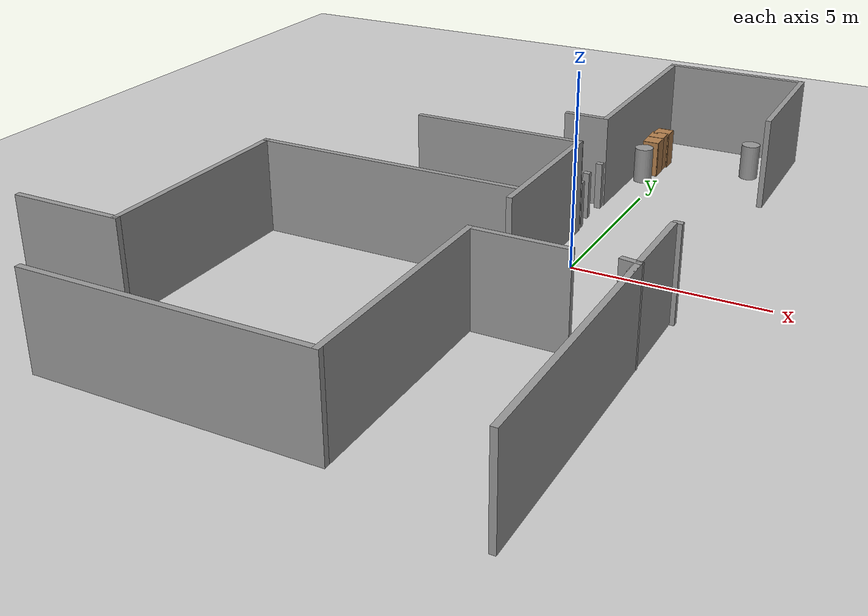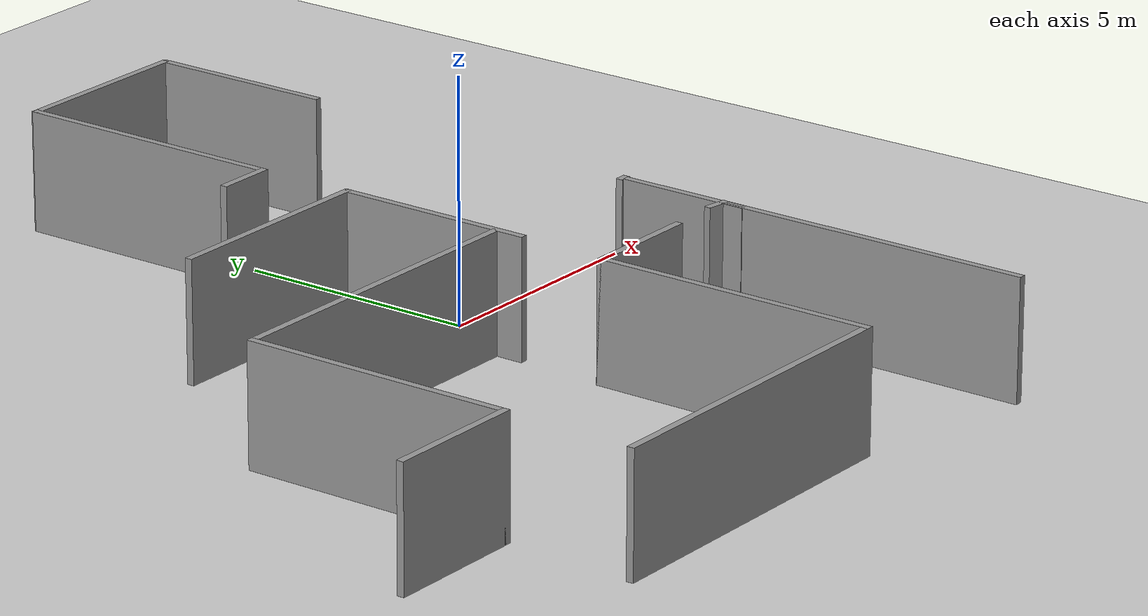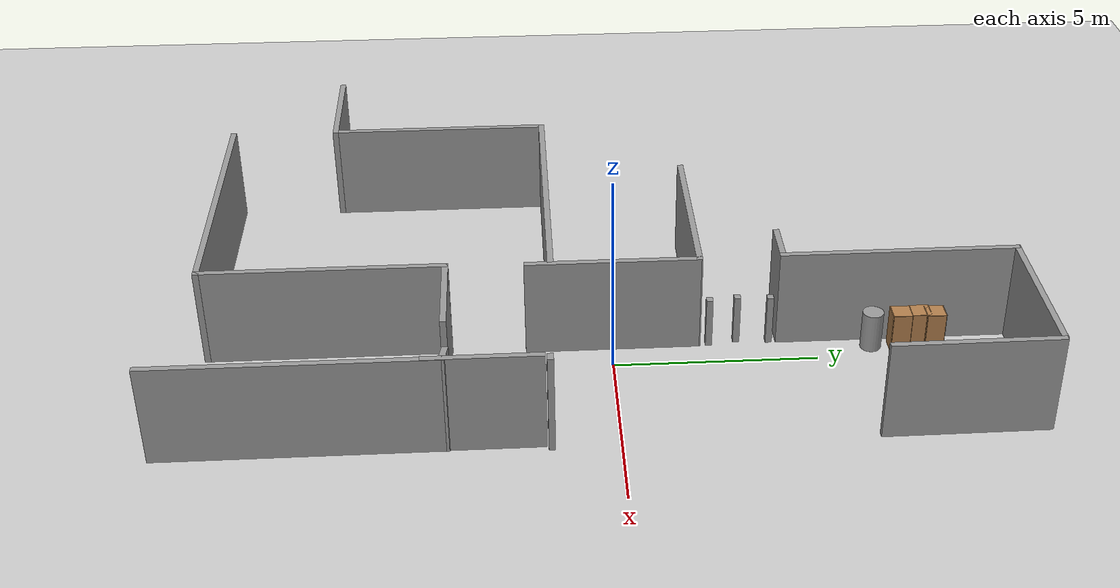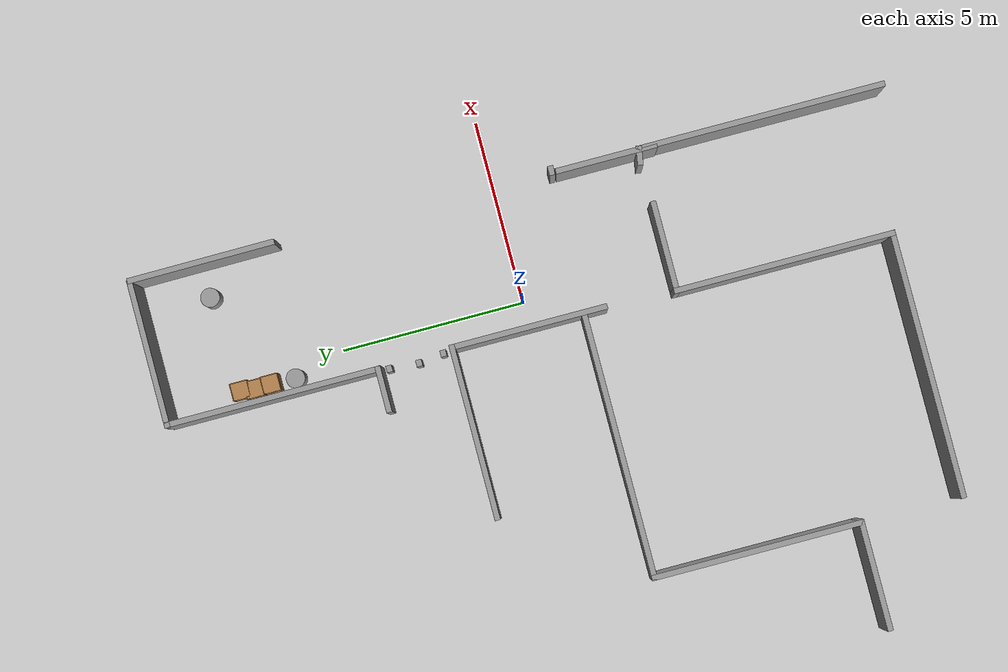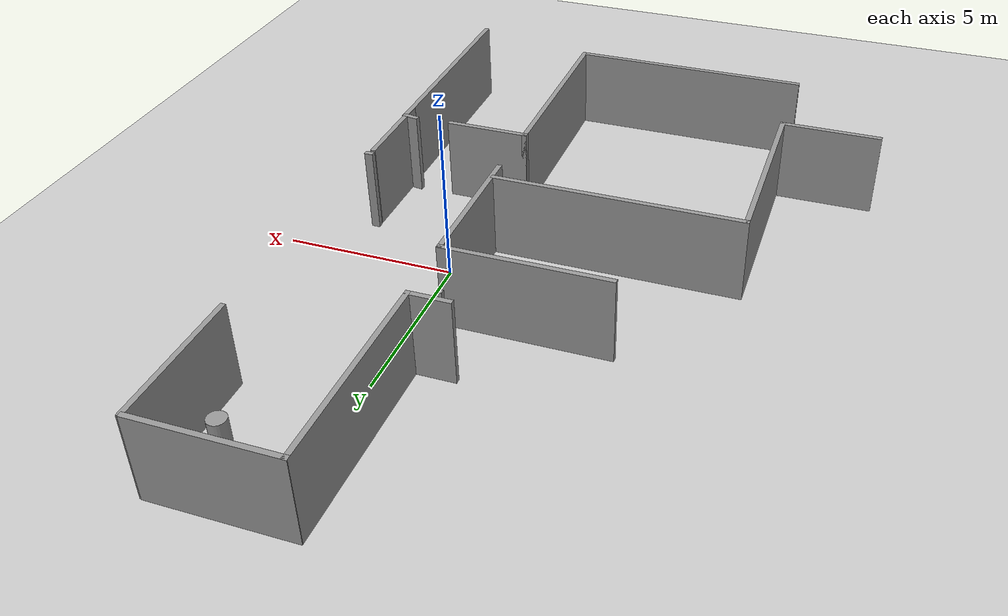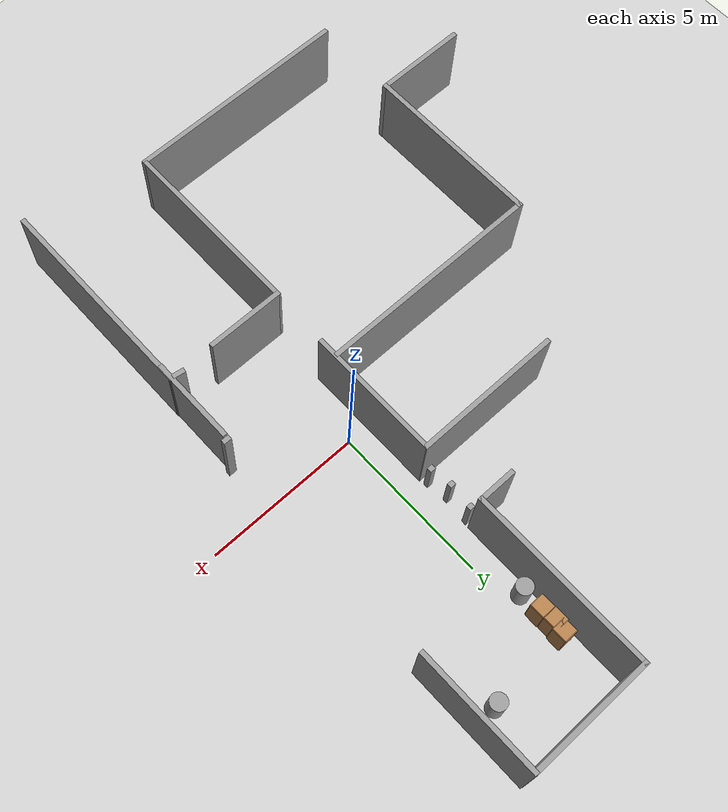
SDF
<sdf version="1.7">
 <world name="default">
  <model name="ground_plane">
   <static>1</static>
   <link name="link">
    <collision name="collision">
     <geometry><plane><normal>0 0 1</normal><size>100 100</size></plane></geometry>
     <surface>
      <contact><collide_bitmask>65535</collide_bitmask></contact>
      <friction><ode><mu>100</mu><mu2>50</mu2></ode></friction>
     </surface>
    </collision>
    <visual name="visual">
     <cast_shadows>0</cast_shadows>
     <geometry><plane><normal>0 0 1</normal><size>100 100</size></plane></geometry>
     <material>
      <script><uri>file://media/materials/scripts/gazebo.material</uri><name>Gazebo/Grey</name></script>
     </material>
    </visual>
   </link>
  </model>
  <model name="unit_box_clone">
   <pose>-0.795969 2.40218 0.644229 0 1.3e-05 -0.000116</pose>
   <link name="link">
    <inertial>
     <mass>1</mass>
     <inertia>
      <ixx>0.166667</ixx>
      <ixy>0</ixy>
      <ixz>0</ixz>
      <iyy>0.166667</iyy>
      <iyz>0</iyz>
      <izz>0.166667</izz>
     </inertia>
    </inertial>
    <collision name="collision"><geometry><box><size>0.179333 0.158753 1.28846</size></box></geometry></collision>
    <visual name="visual">
     <geometry><box><size>0.179333 0.158753 1.28846</size></box></geometry>
     <material>
      <script><name>Gazebo/Grey</name><uri>file://media/materials/scripts/gazebo.material</uri></script>
     </material>
    </visual>
   </link>
  </model>
  <model name="unit_box_clone_0">
   <pose>-0.82605 3.89112 0.64424 2e-06 0.000113 -0.000279</pose>
   <link name="link">
    <inertial>
     <mass>1</mass>
     <inertia>
      <ixx>0.166667</ixx>
      <ixy>0</ixy>
      <ixz>0</ixz>
      <iyy>0.166667</iyy>
      <iyz>0</iyz>
      <izz>0.166667</izz>
     </inertia>
    </inertial>
    <collision name="collision"><geometry><box><size>0.179333 0.158753 1.28846</size></box></geometry></collision>
    <visual name="visual">
     <geometry><box><size>0.179333 0.158753 1.28846</size></box></geometry>
     <material>
      <script><name>Gazebo/Grey</name><uri>file://media/materials/scripts/gazebo.material</uri></script>
     </material>
    </visual>
   </link>
  </model>
  <model name="unit_box_clone_1">
   <pose>-0.881827 3.0893 0.644229 0 1.3e-05 -0.000116</pose>
   <link name="link">
    <inertial>
     <mass>1</mass>
     <inertia>
      <ixx>0.166667</ixx>
      <ixy>0</ixy>
      <ixz>0</ixz>
      <iyy>0.166667</iyy>
      <iyz>0</iyz>
      <izz>0.166667</izz>
     </inertia>
    </inertial>
    <collision name="collision"><geometry><box><size>0.179333 0.158753 1.28846</size></box></geometry></collision>
    <visual name="visual">
     <geometry><box><size>0.179333 0.158753 1.28846</size></box></geometry>
     <material>
      <script><name>Gazebo/Grey</name><uri>file://media/materials/scripts/gazebo.material</uri></script>
     </material>
    </visual>
   </link>
  </model>
  <model name="cabinet_clone">
   <static>1</static>
   <link name="cabinet_bottom_plate">
    <inertial>
     <pose>0 0 -1 0 -0 0</pose>
     <inertia><ixx>2.05</ixx><ixy>0</ixy><ixz>0</ixz><iyy>2.05</iyy><iyz>0</iyz><izz>2.05</izz></inertia>
     <mass>25</mass>
    </inertial>
    <collision name="cabinet_bottom_plate_geom">
     <pose>0 0 0.01 0 -0 0</pose>
     <geometry><box><size>0.45 0.45 0.02</size></box></geometry>
    </collision>
    <visual name="cabinet_bottom_plate_geom_visual">
     <pose>0 0 0.01 0 -0 0</pose>
     <geometry><box><size>0.45 0.45 0.02</size></box></geometry>
     <material>
      <script><uri>file://media/materials/scripts/gazebo.material</uri><name>Gazebo/Wood</name></script>
     </material>
    </visual>
    <collision name="cabinet_bottom_plate_geom_cabinet_back_plate">
     <pose>0.235 0 0.51 0 -0 0</pose>
     <geometry><box><size>0.02 0.45 1.02</size></box></geometry>
    </collision>
    <visual name="cabinet_bottom_plate_geom_cabinet_back_plate_visual">
     <pose>0.235 0 0.51 0 -0 0</pose>
     <geometry><box><size>0.02 0.45 1.02</size></box></geometry>
     <material>
      <script><uri>file://media/materials/scripts/gazebo.material</uri><name>Gazebo/Wood</name></script>
     </material>
    </visual>
    <collision name="cabinet_bottom_plate_geom_cabinet_left_plate">
     <pose>0 0.235 0.51 0 -0 0</pose>
     <geometry><box><size>0.45 0.02 1.02</size></box></geometry>
    </collision>
    <visual name="cabinet_bottom_plate_geom_cabinet_left_plate_visual">
     <pose>0 0.235 0.51 0 -0 0</pose>
     <geometry><box><size>0.45 0.02 1.02</size></box></geometry>
     <material>
      <script><uri>file://media/materials/scripts/gazebo.material</uri><name>Gazebo/Wood</name></script>
     </material>
    </visual>
    <collision name="cabinet_bottom_plate_geom_cabinet_middle_plate">
     <pose>0 0 0.51 0 -0 0</pose>
     <geometry><box><size>0.45 0.45 0.02</size></box></geometry>
    </collision>
    <visual name="cabinet_bottom_plate_geom_cabinet_middle_plate_visual">
     <pose>0 0 0.51 0 -0 0</pose>
     <geometry><box><size>0.45 0.45 0.02</size></box></geometry>
     <material>
      <script><uri>file://media/materials/scripts/gazebo.material</uri><name>Gazebo/Wood</name></script>
     </material>
    </visual>
    <collision name="cabinet_bottom_plate_geom_cabinet_right_plate">
     <pose>0 -0.235 0.51 0 -0 0</pose>
     <geometry><box><size>0.45 0.02 1.02</size></box></geometry>
    </collision>
    <visual name="cabinet_bottom_plate_geom_cabinet_right_plate_visual">
     <pose>0 -0.235 0.51 0 -0 0</pose>
     <geometry><box><size>0.45 0.02 1.02</size></box></geometry>
     <material>
      <script><uri>file://media/materials/scripts/gazebo.material</uri><name>Gazebo/Wood</name></script>
     </material>
    </visual>
    <collision name="cabinet_bottom_plate_geom_cabinet_top_plate">
     <pose>0 0 1.01 0 -0 0</pose>
     <geometry><box><size>0.45 0.45 0.02</size></box></geometry>
    </collision>
    <visual name="cabinet_bottom_plate_geom_cabinet_top_plate_visual">
     <pose>0 0 1.01 0 -0 0</pose>
     <geometry><box><size>0.45 0.45 0.02</size></box></geometry>
     <material>
      <script><uri>file://media/materials/scripts/gazebo.material</uri><name>Gazebo/Wood</name></script>
     </material>
    </visual>
   </link>
   <pose>-0.388338 7.0544 0 0 -0 0</pose>
  </model>
  <model name="cabinet_clone_0">
   <static>1</static>
   <link name="cabinet_bottom_plate">
    <inertial>
     <pose>0 0 -1 0 -0 0</pose>
     <inertia><ixx>2.05</ixx><ixy>0</ixy><ixz>0</ixz><iyy>2.05</iyy><iyz>0</iyz><izz>2.05</izz></inertia>
     <mass>25</mass>
    </inertial>
    <collision name="cabinet_bottom_plate_geom">
     <pose>0 0 0.01 0 -0 0</pose>
     <geometry><box><size>0.45 0.45 0.02</size></box></geometry>
    </collision>
    <visual name="cabinet_bottom_plate_geom_visual">
     <pose>0 0 0.01 0 -0 0</pose>
     <geometry><box><size>0.45 0.45 0.02</size></box></geometry>
     <material>
      <script><uri>file://media/materials/scripts/gazebo.material</uri><name>Gazebo/Wood</name></script>
     </material>
    </visual>
    <collision name="cabinet_bottom_plate_geom_cabinet_back_plate">
     <pose>0.235 0 0.51 0 -0 0</pose>
     <geometry><box><size>0.02 0.45 1.02</size></box></geometry>
    </collision>
    <visual name="cabinet_bottom_plate_geom_cabinet_back_plate_visual">
     <pose>0.235 0 0.51 0 -0 0</pose>
     <geometry><box><size>0.02 0.45 1.02</size></box></geometry>
     <material>
      <script><uri>file://media/materials/scripts/gazebo.material</uri><name>Gazebo/Wood</name></script>
     </material>
    </visual>
    <collision name="cabinet_bottom_plate_geom_cabinet_left_plate">
     <pose>0 0.235 0.51 0 -0 0</pose>
     <geometry><box><size>0.45 0.02 1.02</size></box></geometry>
    </collision>
    <visual name="cabinet_bottom_plate_geom_cabinet_left_plate_visual">
     <pose>0 0.235 0.51 0 -0 0</pose>
     <geometry><box><size>0.45 0.02 1.02</size></box></geometry>
     <material>
      <script><uri>file://media/materials/scripts/gazebo.material</uri><name>Gazebo/Wood</name></script>
     </material>
    </visual>
    <collision name="cabinet_bottom_plate_geom_cabinet_middle_plate">
     <pose>0 0 0.51 0 -0 0</pose>
     <geometry><box><size>0.45 0.45 0.02</size></box></geometry>
    </collision>
    <visual name="cabinet_bottom_plate_geom_cabinet_middle_plate_visual">
     <pose>0 0 0.51 0 -0 0</pose>
     <geometry><box><size>0.45 0.45 0.02</size></box></geometry>
     <material>
      <script><uri>file://media/materials/scripts/gazebo.material</uri><name>Gazebo/Wood</name></script>
     </material>
    </visual>
    <collision name="cabinet_bottom_plate_geom_cabinet_right_plate">
     <pose>0 -0.235 0.51 0 -0 0</pose>
     <geometry><box><size>0.45 0.02 1.02</size></box></geometry>
    </collision>
    <visual name="cabinet_bottom_plate_geom_cabinet_right_plate_visual">
     <pose>0 -0.235 0.51 0 -0 0</pose>
     <geometry><box><size>0.45 0.02 1.02</size></box></geometry>
     <material>
      <script><uri>file://media/materials/scripts/gazebo.material</uri><name>Gazebo/Wood</name></script>
     </material>
    </visual>
    <collision name="cabinet_bottom_plate_geom_cabinet_top_plate">
     <pose>0 0 1.01 0 -0 0</pose>
     <geometry><box><size>0.45 0.45 0.02</size></box></geometry>
    </collision>
    <visual name="cabinet_bottom_plate_geom_cabinet_top_plate_visual">
     <pose>0 0 1.01 0 -0 0</pose>
     <geometry><box><size>0.45 0.45 0.02</size></box></geometry>
     <material>
      <script><uri>file://media/materials/scripts/gazebo.material</uri><name>Gazebo/Wood</name></script>
     </material>
    </visual>
   </link>
   <pose>-0.404646 7.52036 0 0 -0 0</pose>
  </model>
  <model name="cabinet_clone_1">
   <static>1</static>
   <link name="cabinet_bottom_plate">
    <inertial>
     <pose>0 0 -1 0 -0 0</pose>
     <inertia><ixx>2.05</ixx><ixy>0</ixy><ixz>0</ixz><iyy>2.05</iyy><iyz>0</iyz><izz>2.05</izz></inertia>
     <mass>25</mass>
    </inertial>
    <collision name="cabinet_bottom_plate_geom">
     <pose>0 0 0.01 0 -0 0</pose>
     <geometry><box><size>0.45 0.45 0.02</size></box></geometry>
    </collision>
    <visual name="cabinet_bottom_plate_geom_visual">
     <pose>0 0 0.01 0 -0 0</pose>
     <geometry><box><size>0.45 0.45 0.02</size></box></geometry>
     <material>
      <script><uri>file://media/materials/scripts/gazebo.material</uri><name>Gazebo/Wood</name></script>
     </material>
    </visual>
    <collision name="cabinet_bottom_plate_geom_cabinet_back_plate">
     <pose>0.235 0 0.51 0 -0 0</pose>
     <geometry><box><size>0.02 0.45 1.02</size></box></geometry>
    </collision>
    <visual name="cabinet_bottom_plate_geom_cabinet_back_plate_visual">
     <pose>0.235 0 0.51 0 -0 0</pose>
     <geometry><box><size>0.02 0.45 1.02</size></box></geometry>
     <material>
      <script><uri>file://media/materials/scripts/gazebo.material</uri><name>Gazebo/Wood</name></script>
     </material>
    </visual>
    <collision name="cabinet_bottom_plate_geom_cabinet_left_plate">
     <pose>0 0.235 0.51 0 -0 0</pose>
     <geometry><box><size>0.45 0.02 1.02</size></box></geometry>
    </collision>
    <visual name="cabinet_bottom_plate_geom_cabinet_left_plate_visual">
     <pose>0 0.235 0.51 0 -0 0</pose>
     <geometry><box><size>0.45 0.02 1.02</size></box></geometry>
     <material>
      <script><uri>file://media/materials/scripts/gazebo.material</uri><name>Gazebo/Wood</name></script>
     </material>
    </visual>
    <collision name="cabinet_bottom_plate_geom_cabinet_middle_plate">
     <pose>0 0 0.51 0 -0 0</pose>
     <geometry><box><size>0.45 0.45 0.02</size></box></geometry>
    </collision>
    <visual name="cabinet_bottom_plate_geom_cabinet_middle_plate_visual">
     <pose>0 0 0.51 0 -0 0</pose>
     <geometry><box><size>0.45 0.45 0.02</size></box></geometry>
     <material>
      <script><uri>file://media/materials/scripts/gazebo.material</uri><name>Gazebo/Wood</name></script>
     </material>
    </visual>
    <collision name="cabinet_bottom_plate_geom_cabinet_right_plate">
     <pose>0 -0.235 0.51 0 -0 0</pose>
     <geometry><box><size>0.45 0.02 1.02</size></box></geometry>
    </collision>
    <visual name="cabinet_bottom_plate_geom_cabinet_right_plate_visual">
     <pose>0 -0.235 0.51 0 -0 0</pose>
     <geometry><box><size>0.45 0.02 1.02</size></box></geometry>
     <material>
      <script><uri>file://media/materials/scripts/gazebo.material</uri><name>Gazebo/Wood</name></script>
     </material>
    </visual>
    <collision name="cabinet_bottom_plate_geom_cabinet_top_plate">
     <pose>0 0 1.01 0 -0 0</pose>
     <geometry><box><size>0.45 0.45 0.02</size></box></geometry>
    </collision>
    <visual name="cabinet_bottom_plate_geom_cabinet_top_plate_visual">
     <pose>0 0 1.01 0 -0 0</pose>
     <geometry><box><size>0.45 0.45 0.02</size></box></geometry>
     <material>
      <script><uri>file://media/materials/scripts/gazebo.material</uri><name>Gazebo/Wood</name></script>
     </material>
    </visual>
   </link>
   <pose>-0.359128 7.87917 0 0 -0 0</pose>
  </model>
  <model name="unit_cylinder_0_clone_0">
   <pose>-0.42075 6.37154 0.499992 -1e-06 -1e-06 1e-06</pose>
   <link name="link">
    <inertial>
     <mass>1</mass>
     <inertia><ixx>0.145833</ixx><ixy>0</ixy><ixz>0</ixz><iyy>0.145833</iyy><iyz>0</iyz><izz>0.125</izz></inertia>
    </inertial>
    <collision name="collision">
     <geometry><cylinder><radius>0.25828</radius><length>1</length></cylinder></geometry>
    </collision>
    <visual name="visual">
     <geometry><cylinder><radius>0.25828</radius><length>1</length></cylinder></geometry>
     <material>
      <script><name>Gazebo/Grey</name><uri>file://media/materials/scripts/gazebo.material</uri></script>
     </material>
    </visual>
   </link>
  </model>
  <model name="unit_cylinder_0_clone_1">
   <pose>2.24031 8.02243 0.499992 -1e-06 -1e-06 1e-06</pose>
   <link name="link">
    <inertial>
     <mass>1</mass>
     <inertia><ixx>0.145833</ixx><ixy>0</ixy><ixz>0</ixz><iyy>0.145833</iyy><iyz>0</iyz><izz>0.125</izz></inertia>
    </inertial>
    <collision name="collision">
     <geometry><cylinder><radius>0.25828</radius><length>1</length></cylinder></geometry>
    </collision>
    <visual name="visual">
     <geometry><cylinder><radius>0.25828</radius><length>1</length></cylinder></geometry>
     <material>
      <script><name>Gazebo/Grey</name><uri>file://media/materials/scripts/gazebo.material</uri></script>
     </material>
    </visual>
   </link>
  </model>
  <model name="rastech_map_02">
   <link name="Wall_14">
    <pose>-2.58274 10.4706 0 0 -0 0</pose>
    <visual name="Wall_14_Visual">
     <pose>0 0 1.25 0 -0 0</pose>
     <geometry><box><size>4 0.15 2.5</size></box></geometry>
     <material>
      <script><uri>file://media/materials/scripts/gazebo.material</uri><name>Gazebo/Grey</name></script>
      <ambient>1 1 1 1</ambient>
      <shader type="pixel"/>
     </material>
     <meta><layer>0</layer></meta>
    </visual>
    <collision name="Wall_14_Collision">
     <pose>0 0 1.25 0 -0 0</pose>
     <geometry><box><size>4 0.15 2.5</size></box></geometry>
     <surface>
      <friction>
       <ode><mu>1</mu><mu2>1</mu2><fdir1>0 0 0</fdir1><slip1>0</slip1><slip2>0</slip2></ode>
       <torsional>
        <coefficient>1</coefficient>
        <patch_radius>0</patch_radius>
        <surface_radius>0</surface_radius>
        <use_patch_radius>1</use_patch_radius>
        <ode><slip>0</slip></ode>
       </torsional>
      </friction>
      <bounce><restitution_coefficient>0</restitution_coefficient><threshold>1e+06</threshold></bounce>
      <contact>
       <collide_without_contact>0</collide_without_contact>
       <collide_without_contact_bitmask>1</collide_without_contact_bitmask>
       <collide_bitmask>1</collide_bitmask>
       <ode>
        <soft_cfm>0</soft_cfm>
        <soft_erp>0.2</soft_erp>
        <kp>1e+13</kp>
        <kd>1</kd>
        <max_vel>0.01</max_vel>
        <min_depth>0</min_depth>
       </ode>
       <bullet>
        <split_impulse>1</split_impulse>
        <split_impulse_penetration_threshold>-0.01</split_impulse_penetration_threshold>
        <soft_cfm>0</soft_cfm>
        <soft_erp>0.2</soft_erp>
        <kp>1e+13</kp>
        <kd>1</kd>
       </bullet>
      </contact>
     </surface>
    </collision>
   </link>
   <link name="Wall_18">
    <pose>-0.701383 -2.43126 0 0 -0 1.5708</pose>
    <visual name="Wall_18_Visual">
     <pose>0 0 1.25 0 -0 0</pose>
     <geometry><box><size>2.75 0.15 2.5</size></box></geometry>
     <material>
      <script><uri>file://media/materials/scripts/gazebo.material</uri><name>Gazebo/Grey</name></script>
      <ambient>1 1 1 1</ambient>
      <shader type="pixel"/>
     </material>
     <meta><layer>0</layer></meta>
    </visual>
    <collision name="Wall_18_Collision">
     <pose>0 0 1.25 0 -0 0</pose>
     <geometry><box><size>2.75 0.15 2.5</size></box></geometry>
     <surface>
      <friction>
       <ode><mu>1</mu><mu2>1</mu2><fdir1>0 0 0</fdir1><slip1>0</slip1><slip2>0</slip2></ode>
       <torsional>
        <coefficient>1</coefficient>
        <patch_radius>0</patch_radius>
        <surface_radius>0</surface_radius>
        <use_patch_radius>1</use_patch_radius>
        <ode><slip>0</slip></ode>
       </torsional>
      </friction>
      <bounce><restitution_coefficient>0</restitution_coefficient><threshold>1e+06</threshold></bounce>
      <contact>
       <collide_without_contact>0</collide_without_contact>
       <collide_without_contact_bitmask>1</collide_without_contact_bitmask>
       <collide_bitmask>1</collide_bitmask>
       <ode>
        <soft_cfm>0</soft_cfm>
        <soft_erp>0.2</soft_erp>
        <kp>1e+13</kp>
        <kd>1</kd>
        <max_vel>0.01</max_vel>
        <min_depth>0</min_depth>
       </ode>
       <bullet>
        <split_impulse>1</split_impulse>
        <split_impulse_penetration_threshold>-0.01</split_impulse_penetration_threshold>
        <soft_cfm>0</soft_cfm>
        <soft_erp>0.2</soft_erp>
        <kp>1e+13</kp>
        <kd>1</kd>
       </bullet>
      </contact>
     </surface>
    </collision>
   </link>
   <link name="Wall_19">
    <pose>-0.645492 -0.952282 -0.032873 0 -0 0</pose>
    <visual name="Wall_19_Visual">
     <pose>0 0 1.25 0 -0 0</pose>
     <geometry><box><size>0.25 0.15 2.5</size></box></geometry>
     <material>
      <script><uri>file://media/materials/scripts/gazebo.material</uri><name>Gazebo/Grey</name></script>
      <ambient>1 1 1 1</ambient>
      <shader type="pixel"/>
     </material>
     <meta><layer>0</layer></meta>
    </visual>
    <collision name="Wall_19_Collision">
     <pose>0 0 1.25 0 -0 0</pose>
     <geometry><box><size>0.25 0.15 2.5</size></box></geometry>
     <surface>
      <friction>
       <ode><mu>1</mu><mu2>1</mu2><fdir1>0 0 0</fdir1><slip1>0</slip1><slip2>0</slip2></ode>
       <torsional>
        <coefficient>1</coefficient>
        <patch_radius>0</patch_radius>
        <surface_radius>0</surface_radius>
        <use_patch_radius>1</use_patch_radius>
        <ode><slip>0</slip></ode>
       </torsional>
      </friction>
      <bounce><restitution_coefficient>0</restitution_coefficient><threshold>1e+06</threshold></bounce>
      <contact>
       <collide_without_contact>0</collide_without_contact>
       <collide_without_contact_bitmask>1</collide_without_contact_bitmask>
       <collide_bitmask>1</collide_bitmask>
       <ode>
        <soft_cfm>0</soft_cfm>
        <soft_erp>0.2</soft_erp>
        <kp>1e+13</kp>
        <kd>1</kd>
        <max_vel>0.01</max_vel>
        <min_depth>0</min_depth>
       </ode>
       <bullet>
        <split_impulse>1</split_impulse>
        <split_impulse_penetration_threshold>-0.01</split_impulse_penetration_threshold>
        <soft_cfm>0</soft_cfm>
        <soft_erp>0.2</soft_erp>
        <kp>1e+13</kp>
        <kd>1</kd>
       </bullet>
      </contact>
     </surface>
    </collision>
   </link>
   <link name="Wall_4">
    <pose>-4.46197 0.668338 0 0 0 -1.5708</pose>
    <visual name="Wall_4_Visual">
     <pose>0 0 1.25 0 -0 0</pose>
     <geometry><box><size>4.25 0.15 2.5</size></box></geometry>
     <material>
      <script><uri>file://media/materials/scripts/gazebo.material</uri><name>Gazebo/Grey</name></script>
      <ambient>1 1 1 1</ambient>
      <shader type="pixel"/>
     </material>
     <meta><layer>0</layer></meta>
    </visual>
    <collision name="Wall_4_Collision">
     <pose>0 0 1.25 0 -0 0</pose>
     <geometry><box><size>4.25 0.15 2.5</size></box></geometry>
     <surface>
      <friction>
       <ode><mu>1</mu><mu2>1</mu2><fdir1>0 0 0</fdir1><slip1>0</slip1><slip2>0</slip2></ode>
       <torsional>
        <coefficient>1</coefficient>
        <patch_radius>0</patch_radius>
        <surface_radius>0</surface_radius>
        <use_patch_radius>1</use_patch_radius>
        <ode><slip>0</slip></ode>
       </torsional>
      </friction>
      <bounce><restitution_coefficient>0</restitution_coefficient><threshold>1e+06</threshold></bounce>
      <contact>
       <collide_without_contact>0</collide_without_contact>
       <collide_without_contact_bitmask>1</collide_without_contact_bitmask>
       <collide_bitmask>1</collide_bitmask>
       <ode>
        <soft_cfm>0</soft_cfm>
        <soft_erp>0.2</soft_erp>
        <kp>1e+13</kp>
        <kd>1</kd>
        <max_vel>0.01</max_vel>
        <min_depth>0</min_depth>
       </ode>
       <bullet>
        <split_impulse>1</split_impulse>
        <split_impulse_penetration_threshold>-0.01</split_impulse_penetration_threshold>
        <soft_cfm>0</soft_cfm>
        <soft_erp>0.2</soft_erp>
        <kp>1e+13</kp>
        <kd>1</kd>
       </bullet>
      </contact>
     </surface>
    </collision>
   </link>
   <link name="Wall_6">
    <pose>-6.76197 2.74893 0 0 -0 3.14159</pose>
    <visual name="Wall_6_Visual">
     <pose>0 0 1.25 0 -0 0</pose>
     <geometry><box><size>4.75 0.15 2.5</size></box></geometry>
     <material>
      <script><uri>file://media/materials/scripts/gazebo.material</uri><name>Gazebo/Grey</name></script>
      <ambient>1 1 1 1</ambient>
      <shader type="pixel"/>
     </material>
     <meta><layer>0</layer></meta>
    </visual>
    <collision name="Wall_6_Collision">
     <pose>0 0 1.25 0 -0 0</pose>
     <geometry><box><size>4.75 0.15 2.5</size></box></geometry>
     <surface>
      <friction>
       <ode><mu>1</mu><mu2>1</mu2><fdir1>0 0 0</fdir1><slip1>0</slip1><slip2>0</slip2></ode>
       <torsional>
        <coefficient>1</coefficient>
        <patch_radius>0</patch_radius>
        <surface_radius>0</surface_radius>
        <use_patch_radius>1</use_patch_radius>
        <ode><slip>0</slip></ode>
       </torsional>
      </friction>
      <bounce><restitution_coefficient>0</restitution_coefficient><threshold>1e+06</threshold></bounce>
      <contact>
       <collide_without_contact>0</collide_without_contact>
       <collide_without_contact_bitmask>1</collide_without_contact_bitmask>
       <collide_bitmask>1</collide_bitmask>
       <ode>
        <soft_cfm>0</soft_cfm>
        <soft_erp>0.2</soft_erp>
        <kp>1e+13</kp>
        <kd>1</kd>
        <max_vel>0.01</max_vel>
        <min_depth>0</min_depth>
       </ode>
       <bullet>
        <split_impulse>1</split_impulse>
        <split_impulse_penetration_threshold>-0.01</split_impulse_penetration_threshold>
        <soft_cfm>0</soft_cfm>
        <soft_erp>0.2</soft_erp>
        <kp>1e+13</kp>
        <kd>1</kd>
       </bullet>
      </contact>
     </surface>
    </collision>
   </link>
   <link name="Wall_61">
    <pose>-4.53336 -6.24499 0 0 0 -1.5708</pose>
    <visual name="Wall_61_Visual">
     <pose>0 0 1.25 0 -0 0</pose>
     <geometry><box><size>6 0.15 2.5</size></box></geometry>
     <material>
      <script><uri>file://media/materials/scripts/gazebo.material</uri><name>Gazebo/Grey</name></script>
      <ambient>1 1 1 1</ambient>
      <shader type="pixel"/>
     </material>
     <meta><layer>0</layer></meta>
    </visual>
    <collision name="Wall_61_Collision">
     <pose>0 0 1.25 0 -0 0</pose>
     <geometry><box><size>6 0.15 2.5</size></box></geometry>
     <surface>
      <friction>
       <ode><mu>1</mu><mu2>1</mu2><fdir1>0 0 0</fdir1><slip1>0</slip1><slip2>0</slip2></ode>
       <torsional>
        <coefficient>1</coefficient>
        <patch_radius>0</patch_radius>
        <surface_radius>0</surface_radius>
        <use_patch_radius>1</use_patch_radius>
        <ode><slip>0</slip></ode>
       </torsional>
      </friction>
      <bounce><restitution_coefficient>0</restitution_coefficient><threshold>1e+06</threshold></bounce>
      <contact>
       <collide_without_contact>0</collide_without_contact>
       <collide_without_contact_bitmask>1</collide_without_contact_bitmask>
       <collide_bitmask>1</collide_bitmask>
       <ode>
        <soft_cfm>0</soft_cfm>
        <soft_erp>0.2</soft_erp>
        <kp>1e+13</kp>
        <kd>1</kd>
        <max_vel>0.01</max_vel>
        <min_depth>0</min_depth>
       </ode>
       <bullet>
        <split_impulse>1</split_impulse>
        <split_impulse_penetration_threshold>-0.01</split_impulse_penetration_threshold>
        <soft_cfm>0</soft_cfm>
        <soft_erp>0.2</soft_erp>
        <kp>1e+13</kp>
        <kd>1</kd>
       </bullet>
      </contact>
     </surface>
    </collision>
   </link>
   <link name="Wall_62">
    <pose>-8.08335 -9.16999 0 0 -0 3.14159</pose>
    <visual name="Wall_62_Visual">
     <pose>0 0 1.25 0 -0 0</pose>
     <geometry><box><size>7.25 0.15 2.5</size></box></geometry>
     <material>
      <script><uri>file://media/materials/scripts/gazebo.material</uri><name>Gazebo/Grey</name></script>
      <ambient>1 1 1 1</ambient>
      <shader type="pixel"/>
     </material>
     <meta><layer>0</layer></meta>
    </visual>
    <collision name="Wall_62_Collision">
     <pose>0 0 1.25 0 -0 0</pose>
     <geometry><box><size>7.25 0.15 2.5</size></box></geometry>
     <surface>
      <friction>
       <ode><mu>1</mu><mu2>1</mu2><fdir1>0 0 0</fdir1><slip1>0</slip1><slip2>0</slip2></ode>
       <torsional>
        <coefficient>1</coefficient>
        <patch_radius>0</patch_radius>
        <surface_radius>0</surface_radius>
        <use_patch_radius>1</use_patch_radius>
        <ode><slip>0</slip></ode>
       </torsional>
      </friction>
      <bounce><restitution_coefficient>0</restitution_coefficient><threshold>1e+06</threshold></bounce>
      <contact>
       <collide_without_contact>0</collide_without_contact>
       <collide_without_contact_bitmask>1</collide_without_contact_bitmask>
       <collide_bitmask>1</collide_bitmask>
       <ode>
        <soft_cfm>0</soft_cfm>
        <soft_erp>0.2</soft_erp>
        <kp>1e+13</kp>
        <kd>1</kd>
        <max_vel>0.01</max_vel>
        <min_depth>0</min_depth>
       </ode>
       <bullet>
        <split_impulse>1</split_impulse>
        <split_impulse_penetration_threshold>-0.01</split_impulse_penetration_threshold>
        <soft_cfm>0</soft_cfm>
        <soft_erp>0.2</soft_erp>
        <kp>1e+13</kp>
        <kd>1</kd>
       </bullet>
      </contact>
     </surface>
    </collision>
   </link>
   <link name="Wall_64">
    <pose>-8.08335 -0.819988 0 0 -0 0</pose>
    <visual name="Wall_64_Visual">
     <pose>0 0 1.25 0 -0 0</pose>
     <geometry><box><size>7.25 0.15 2.5</size></box></geometry>
     <material>
      <script><uri>file://media/materials/scripts/gazebo.material</uri><name>Gazebo/Grey</name></script>
      <ambient>1 1 1 1</ambient>
      <shader type="pixel"/>
     </material>
     <meta><layer>0</layer></meta>
    </visual>
    <collision name="Wall_64_Collision">
     <pose>0 0 1.25 0 -0 0</pose>
     <geometry><box><size>7.25 0.15 2.5</size></box></geometry>
     <surface>
      <friction>
       <ode><mu>1</mu><mu2>1</mu2><fdir1>0 0 0</fdir1><slip1>0</slip1><slip2>0</slip2></ode>
       <torsional>
        <coefficient>1</coefficient>
        <patch_radius>0</patch_radius>
        <surface_radius>0</surface_radius>
        <use_patch_radius>1</use_patch_radius>
        <ode><slip>0</slip></ode>
       </torsional>
      </friction>
      <bounce><restitution_coefficient>0</restitution_coefficient><threshold>1e+06</threshold></bounce>
      <contact>
       <collide_without_contact>0</collide_without_contact>
       <collide_without_contact_bitmask>1</collide_without_contact_bitmask>
       <collide_bitmask>1</collide_bitmask>
       <ode>
        <soft_cfm>0</soft_cfm>
        <soft_erp>0.2</soft_erp>
        <kp>1e+13</kp>
        <kd>1</kd>
        <max_vel>0.01</max_vel>
        <min_depth>0</min_depth>
       </ode>
       <bullet>
        <split_impulse>1</split_impulse>
        <split_impulse_penetration_threshold>-0.01</split_impulse_penetration_threshold>
        <soft_cfm>0</soft_cfm>
        <soft_erp>0.2</soft_erp>
        <kp>1e+13</kp>
        <kd>1</kd>
       </bullet>
      </contact>
     </surface>
    </collision>
   </link>
   <link name="Wall_66">
    <pose>-11.6334 -3.61999 0 0 0 -1.5708</pose>
    <visual name="Wall_66_Visual">
     <pose>0 0 1.25 0 -0 0</pose>
     <geometry><box><size>5.75 0.15 2.5</size></box></geometry>
     <material>
      <script><uri>file://media/materials/scripts/gazebo.material</uri><name>Gazebo/Grey</name></script>
      <ambient>1 1 1 1</ambient>
      <shader type="pixel"/>
     </material>
     <meta><layer>0</layer></meta>
    </visual>
    <collision name="Wall_66_Collision">
     <pose>0 0 1.25 0 -0 0</pose>
     <geometry><box><size>5.75 0.15 2.5</size></box></geometry>
     <surface>
      <friction>
       <ode><mu>1</mu><mu2>1</mu2><fdir1>0 0 0</fdir1><slip1>0</slip1><slip2>0</slip2></ode>
       <torsional>
        <coefficient>1</coefficient>
        <patch_radius>0</patch_radius>
        <surface_radius>0</surface_radius>
        <use_patch_radius>1</use_patch_radius>
        <ode><slip>0</slip></ode>
       </torsional>
      </friction>
      <bounce><restitution_coefficient>0</restitution_coefficient><threshold>1e+06</threshold></bounce>
      <contact>
       <collide_without_contact>0</collide_without_contact>
       <collide_without_contact_bitmask>1</collide_without_contact_bitmask>
       <collide_bitmask>1</collide_bitmask>
       <ode>
        <soft_cfm>0</soft_cfm>
        <soft_erp>0.2</soft_erp>
        <kp>1e+13</kp>
        <kd>1</kd>
        <max_vel>0.01</max_vel>
        <min_depth>0</min_depth>
       </ode>
       <bullet>
        <split_impulse>1</split_impulse>
        <split_impulse_penetration_threshold>-0.01</split_impulse_penetration_threshold>
        <soft_cfm>0</soft_cfm>
        <soft_erp>0.2</soft_erp>
        <kp>1e+13</kp>
        <kd>1</kd>
       </bullet>
      </contact>
     </surface>
    </collision>
   </link>
   <link name="Wall_67">
    <pose>-13.0584 -6.41999 0 0 -0 3.14159</pose>
    <visual name="Wall_67_Visual">
     <pose>0 0 1.25 0 -0 0</pose>
     <geometry><box><size>3 0.15 2.5</size></box></geometry>
     <material>
      <script><uri>file://media/materials/scripts/gazebo.material</uri><name>Gazebo/Grey</name></script>
      <ambient>1 1 1 1</ambient>
      <shader type="pixel"/>
     </material>
     <meta><layer>0</layer></meta>
    </visual>
    <collision name="Wall_67_Collision">
     <pose>0 0 1.25 0 -0 0</pose>
     <geometry><box><size>3 0.15 2.5</size></box></geometry>
     <surface>
      <friction>
       <ode><mu>1</mu><mu2>1</mu2><fdir1>0 0 0</fdir1><slip1>0</slip1><slip2>0</slip2></ode>
       <torsional>
        <coefficient>1</coefficient>
        <patch_radius>0</patch_radius>
        <surface_radius>0</surface_radius>
        <use_patch_radius>1</use_patch_radius>
        <ode><slip>0</slip></ode>
       </torsional>
      </friction>
      <bounce><restitution_coefficient>0</restitution_coefficient><threshold>1e+06</threshold></bounce>
      <contact>
       <collide_without_contact>0</collide_without_contact>
       <collide_without_contact_bitmask>1</collide_without_contact_bitmask>
       <collide_bitmask>1</collide_bitmask>
       <ode>
        <soft_cfm>0</soft_cfm>
        <soft_erp>0.2</soft_erp>
        <kp>1e+13</kp>
        <kd>1</kd>
        <max_vel>0.01</max_vel>
        <min_depth>0</min_depth>
       </ode>
       <bullet>
        <split_impulse>1</split_impulse>
        <split_impulse_penetration_threshold>-0.01</split_impulse_penetration_threshold>
        <soft_cfm>0</soft_cfm>
        <soft_erp>0.2</soft_erp>
        <kp>1e+13</kp>
        <kd>1</kd>
       </bullet>
      </contact>
     </surface>
    </collision>
   </link>
   <link name="Wall_69">
    <pose>-0.595237 8.53266 0 0 -0 1.57688</pose>
    <inertial>
     <inertia><ixx>0</ixx><ixy>0</ixy><ixz>0</ixz><iyy>0</iyy><iyz>0</iyz><izz>0</izz></inertia>
     <mass>0</mass>
    </inertial>
    <visual name="Wall_69_Visual">
     <pose>0 0 1.25 0 -0 0</pose>
     <geometry><box><size>3.98743 0.15 2.5</size></box></geometry>
     <material>
      <script><uri>file://media/materials/scripts/gazebo.material</uri><name>Gazebo/Grey</name></script>
      <ambient>1 1 1 1</ambient>
      <shader type="pixel"/>
     </material>
     <meta><layer>0</layer></meta>
    </visual>
    <collision name="Wall_69_Collision">
     <pose>0 0 1.25 0 -0 0</pose>
     <geometry><box><size>3.98743 0.15 2.5</size></box></geometry>
     <surface>
      <friction>
       <ode><mu>1</mu><mu2>1</mu2><fdir1>0 0 0</fdir1><slip1>0</slip1><slip2>0</slip2></ode>
       <torsional>
        <coefficient>1</coefficient>
        <patch_radius>0</patch_radius>
        <surface_radius>0</surface_radius>
        <use_patch_radius>1</use_patch_radius>
        <ode><slip>0</slip></ode>
       </torsional>
      </friction>
      <bounce><restitution_coefficient>0</restitution_coefficient><threshold>1e+06</threshold></bounce>
      <contact>
       <collide_without_contact>0</collide_without_contact>
       <collide_without_contact_bitmask>1</collide_without_contact_bitmask>
       <collide_bitmask>1</collide_bitmask>
       <ode>
        <soft_cfm>0</soft_cfm>
        <soft_erp>0.2</soft_erp>
        <kp>1e+13</kp>
        <kd>1</kd>
        <max_vel>0.01</max_vel>
        <min_depth>0</min_depth>
       </ode>
       <bullet>
        <split_impulse>1</split_impulse>
        <split_impulse_penetration_threshold>-0.01</split_impulse_penetration_threshold>
        <soft_cfm>0</soft_cfm>
        <soft_erp>0.2</soft_erp>
        <kp>1e+13</kp>
        <kd>1</kd>
       </bullet>
      </contact>
     </surface>
    </collision>
   </link>
   <link name="Wall_72">
    <pose>-0.683355 -6.61999 0 0 0 -1.5708</pose>
    <visual name="Wall_72_Visual">
     <pose>0 0 1.25 0 -0 0</pose>
     <geometry><box><size>6.75 0.15 2.5</size></box></geometry>
     <material>
      <script><uri>file://media/materials/scripts/gazebo.material</uri><name>Gazebo/Grey</name></script>
      <ambient>1 1 1 1</ambient>
      <shader type="pixel"/>
     </material>
     <meta><layer>0</layer></meta>
    </visual>
    <collision name="Wall_72_Collision">
     <pose>0 0 1.25 0 -0 0</pose>
     <geometry><box><size>6.75 0.15 2.5</size></box></geometry>
     <surface>
      <friction>
       <ode><mu>1</mu><mu2>1</mu2><fdir1>0 0 0</fdir1><slip1>0</slip1><slip2>0</slip2></ode>
       <torsional>
        <coefficient>1</coefficient>
        <patch_radius>0</patch_radius>
        <surface_radius>0</surface_radius>
        <use_patch_radius>1</use_patch_radius>
        <ode><slip>0</slip></ode>
       </torsional>
      </friction>
      <bounce><restitution_coefficient>0</restitution_coefficient><threshold>1e+06</threshold></bounce>
      <contact>
       <collide_without_contact>0</collide_without_contact>
       <collide_without_contact_bitmask>1</collide_without_contact_bitmask>
       <collide_bitmask>1</collide_bitmask>
       <ode>
        <soft_cfm>0</soft_cfm>
        <soft_erp>0.2</soft_erp>
        <kp>1e+13</kp>
        <kd>1</kd>
        <max_vel>0.01</max_vel>
        <min_depth>0</min_depth>
       </ode>
       <bullet>
        <split_impulse>1</split_impulse>
        <split_impulse_penetration_threshold>-0.01</split_impulse_penetration_threshold>
        <soft_cfm>0</soft_cfm>
        <soft_erp>0.2</soft_erp>
        <kp>1e+13</kp>
        <kd>1</kd>
       </bullet>
      </contact>
     </surface>
    </collision>
   </link>
   <link name="Wall_74">
    <pose>-3.35835 -3.31999 0 0 -0 0</pose>
    <visual name="Wall_74_Visual">
     <pose>0 0 1.25 0 -0 0</pose>
     <geometry><box><size>2.5 0.15 2.5</size></box></geometry>
     <material>
      <script><uri>file://media/materials/scripts/gazebo.material</uri><name>Gazebo/Grey</name></script>
      <ambient>1 1 1 1</ambient>
      <shader type="pixel"/>
     </material>
     <meta><layer>0</layer></meta>
    </visual>
    <collision name="Wall_74_Collision">
     <pose>0 0 1.25 0 -0 0</pose>
     <geometry><box><size>2.5 0.15 2.5</size></box></geometry>
     <surface>
      <friction>
       <ode><mu>1</mu><mu2>1</mu2><fdir1>0 0 0</fdir1><slip1>0</slip1><slip2>0</slip2></ode>
       <torsional>
        <coefficient>1</coefficient>
        <patch_radius>0</patch_radius>
        <surface_radius>0</surface_radius>
        <use_patch_radius>1</use_patch_radius>
        <ode><slip>0</slip></ode>
       </torsional>
      </friction>
      <bounce><restitution_coefficient>0</restitution_coefficient><threshold>1e+06</threshold></bounce>
      <contact>
       <collide_without_contact>0</collide_without_contact>
       <collide_without_contact_bitmask>1</collide_without_contact_bitmask>
       <collide_bitmask>1</collide_bitmask>
       <ode>
        <soft_cfm>0</soft_cfm>
        <soft_erp>0.2</soft_erp>
        <kp>1e+13</kp>
        <kd>1</kd>
        <max_vel>0.01</max_vel>
        <min_depth>0</min_depth>
       </ode>
       <bullet>
        <split_impulse>1</split_impulse>
        <split_impulse_penetration_threshold>-0.01</split_impulse_penetration_threshold>
        <soft_cfm>0</soft_cfm>
        <soft_erp>0.2</soft_erp>
        <kp>1e+13</kp>
        <kd>1</kd>
       </bullet>
      </contact>
     </surface>
    </collision>
   </link>
   <link name="Wall_76">
    <pose>-0.862177 -3.29112 0 0 0 -0.16008</pose>
    <visual name="Wall_76_Visual">
     <pose>0 0 1.25 0 -0 0</pose>
     <geometry><box><size>0.512276 0.15 2.5</size></box></geometry>
     <material>
      <script><uri>file://media/materials/scripts/gazebo.material</uri><name>Gazebo/Grey</name></script>
      <ambient>1 1 1 1</ambient>
      <shader type="pixel"/>
     </material>
     <meta><layer>0</layer></meta>
    </visual>
    <collision name="Wall_76_Collision">
     <pose>0 0 1.25 0 -0 0</pose>
     <geometry><box><size>0.512276 0.15 2.5</size></box></geometry>
     <surface>
      <friction>
       <ode><mu>1</mu><mu2>1</mu2><fdir1>0 0 0</fdir1><slip1>0</slip1><slip2>0</slip2></ode>
       <torsional>
        <coefficient>1</coefficient>
        <patch_radius>0</patch_radius>
        <surface_radius>0</surface_radius>
        <use_patch_radius>1</use_patch_radius>
        <ode><slip>0</slip></ode>
       </torsional>
      </friction>
      <bounce><restitution_coefficient>0</restitution_coefficient><threshold>1e+06</threshold></bounce>
      <contact>
       <collide_without_contact>0</collide_without_contact>
       <collide_without_contact_bitmask>1</collide_without_contact_bitmask>
       <collide_bitmask>1</collide_bitmask>
       <ode>
        <soft_cfm>0</soft_cfm>
        <soft_erp>0.2</soft_erp>
        <kp>1e+13</kp>
        <kd>1</kd>
        <max_vel>0.01</max_vel>
        <min_depth>0</min_depth>
       </ode>
       <bullet>
        <split_impulse>1</split_impulse>
        <split_impulse_penetration_threshold>-0.01</split_impulse_penetration_threshold>
        <soft_cfm>0</soft_cfm>
        <soft_erp>0.2</soft_erp>
        <kp>1e+13</kp>
        <kd>1</kd>
       </bullet>
      </contact>
     </surface>
    </collision>
   </link>
   <link name="Wall_83">
    <pose>-5.05774 4.76426 0 0 -0 3.14159</pose>
    <visual name="Wall_83_Visual">
     <pose>0 0 1.25 0 -0 0</pose>
     <geometry><box><size>1.25 0.15 2.5</size></box></geometry>
     <material>
      <script><uri>file://media/materials/scripts/gazebo.material</uri><name>Gazebo/Grey</name></script>
      <ambient>1 1 1 1</ambient>
      <shader type="pixel"/>
     </material>
     <meta><layer>0</layer></meta>
    </visual>
    <collision name="Wall_83_Collision">
     <pose>0 0 1.25 0 -0 0</pose>
     <geometry><box><size>1.25 0.15 2.5</size></box></geometry>
     <surface>
      <friction>
       <ode><mu>1</mu><mu2>1</mu2><fdir1>0 0 0</fdir1><slip1>0</slip1><slip2>0</slip2></ode>
       <torsional>
        <coefficient>1</coefficient>
        <patch_radius>0</patch_radius>
        <surface_radius>0</surface_radius>
        <use_patch_radius>1</use_patch_radius>
        <ode><slip>0</slip></ode>
       </torsional>
      </friction>
      <bounce><restitution_coefficient>0</restitution_coefficient><threshold>1e+06</threshold></bounce>
      <contact>
       <collide_without_contact>0</collide_without_contact>
       <collide_without_contact_bitmask>1</collide_without_contact_bitmask>
       <collide_bitmask>1</collide_bitmask>
       <ode>
        <soft_cfm>0</soft_cfm>
        <soft_erp>0.2</soft_erp>
        <kp>1e+13</kp>
        <kd>1</kd>
        <max_vel>0.01</max_vel>
        <min_depth>0</min_depth>
       </ode>
       <bullet>
        <split_impulse>1</split_impulse>
        <split_impulse_penetration_threshold>-0.01</split_impulse_penetration_threshold>
        <soft_cfm>0</soft_cfm>
        <soft_erp>0.2</soft_erp>
        <kp>1e+13</kp>
        <kd>1</kd>
       </bullet>
      </contact>
     </surface>
    </collision>
   </link>
   <link name="Wall_9">
    <pose>-4.50774 7.60739 0 0 -0 1.5708</pose>
    <visual name="Wall_9_Visual">
     <pose>0 0 1.25 0 -0 0</pose>
     <geometry><box><size>5.83625 0.15 2.5</size></box></geometry>
     <material>
      <script><uri>file://media/materials/scripts/gazebo.material</uri><name>Gazebo/Grey</name></script>
      <ambient>1 1 1 1</ambient>
      <shader type="pixel"/>
     </material>
     <meta><layer>0</layer></meta>
    </visual>
    <collision name="Wall_9_Collision">
     <pose>0 0 1.25 0 -0 0</pose>
     <geometry><box><size>5.83625 0.15 2.5</size></box></geometry>
     <surface>
      <friction>
       <ode><mu>1</mu><mu2>1</mu2><fdir1>0 0 0</fdir1><slip1>0</slip1><slip2>0</slip2></ode>
       <torsional>
        <coefficient>1</coefficient>
        <patch_radius>0</patch_radius>
        <surface_radius>0</surface_radius>
        <use_patch_radius>1</use_patch_radius>
        <ode><slip>0</slip></ode>
       </torsional>
      </friction>
      <bounce><restitution_coefficient>0</restitution_coefficient><threshold>1e+06</threshold></bounce>
      <contact>
       <collide_without_contact>0</collide_without_contact>
       <collide_without_contact_bitmask>1</collide_without_contact_bitmask>
       <collide_bitmask>1</collide_bitmask>
       <ode>
        <soft_cfm>0</soft_cfm>
        <soft_erp>0.2</soft_erp>
        <kp>1e+13</kp>
        <kd>1</kd>
        <max_vel>0.01</max_vel>
        <min_depth>0</min_depth>
       </ode>
       <bullet>
        <split_impulse>1</split_impulse>
        <split_impulse_penetration_threshold>-0.01</split_impulse_penetration_threshold>
        <soft_cfm>0</soft_cfm>
        <soft_erp>0.2</soft_erp>
        <kp>1e+13</kp>
        <kd>1</kd>
       </bullet>
      </contact>
     </surface>
    </collision>
   </link>
   <static>1</static>
   <pose>3.70595 -0.630359 0 0 -0 0</pose>
  </model>
 </world>
</sdf>
